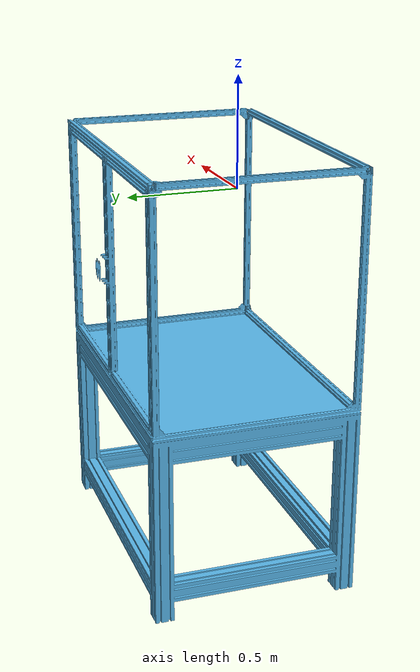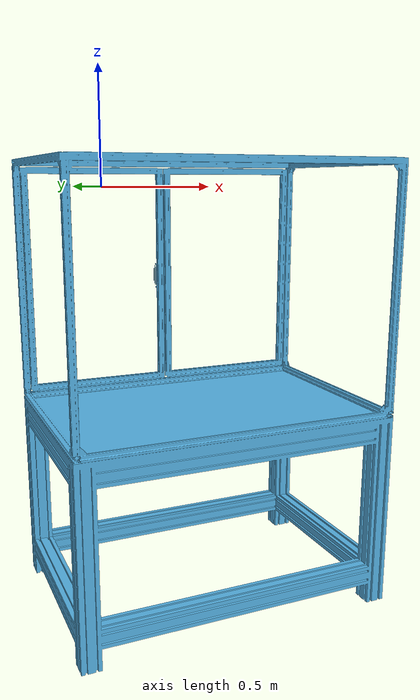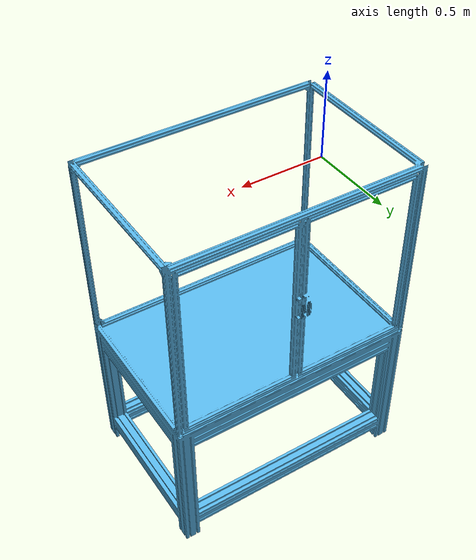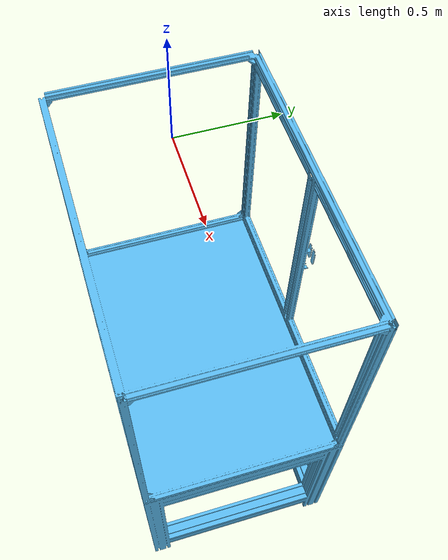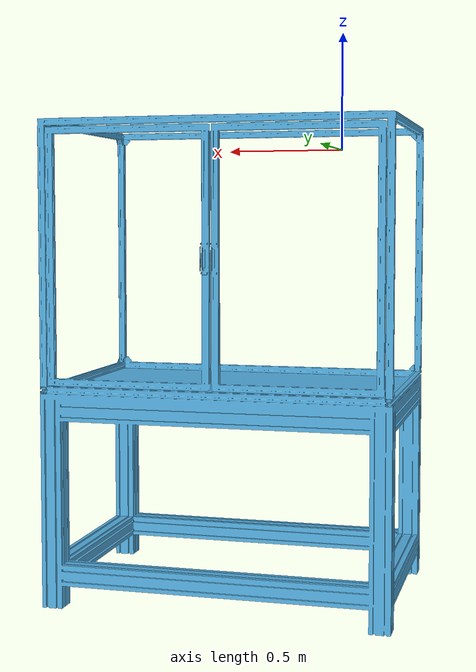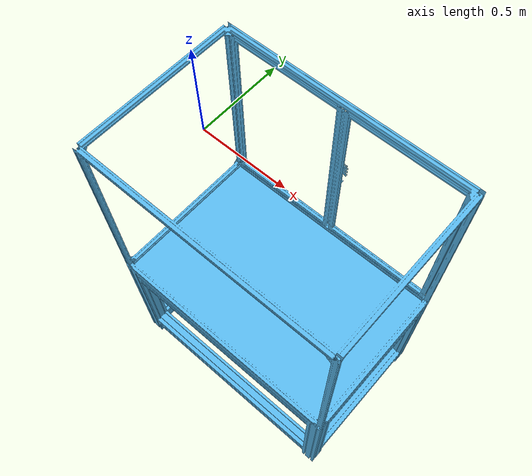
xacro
<?xml version="1.0"?>
<robot xmlns:xacro="http://www.ros.org/wiki/xacro" >

    <link name="world">
    </link>

    <xacro:property name="robot_base_length" value="0.30" />
    <xacro:property name="robot_base_width" value="0.52" />
    <xacro:property name="robot_base_height" value="0.99" />
    <xacro:property name="robotcell_length" value="1.44" />
    <xacro:property name="robotcell_width" value="0.94" />
    <xacro:property name="robotcell_height" value="1.13" />

    <joint name="world_to_robotcell_joint" type="fixed">
        <parent link="world" />
        <child link="robotcell_link" />
        <origin xyz="0 0 0" rpy="0 0 0" />
    </joint>

    <link name="robotcell_link">
        <visual>
            <origin rpy="0 ${-pi} ${-pi/2}" xyz="${-robot_base_length} ${-robot_base_width} ${robot_base_height}" />
            <geometry>
                <mesh filename="package://workcell_description/meshes/Robotcell.stl" scale="0.001 0.001 0.001"/>
            </geometry>
        </visual>
        <collision>
            <origin rpy="0 ${-pi} ${-pi/2}" xyz="${-robot_base_length} ${-robot_base_width} ${robot_base_height}" />
            <geometry>
                <mesh filename="package://workcell_description/meshes/Robotcell.stl" scale="0.001 0.001 0.001" />
            </geometry>
        </collision>
    </link>

</robot>
